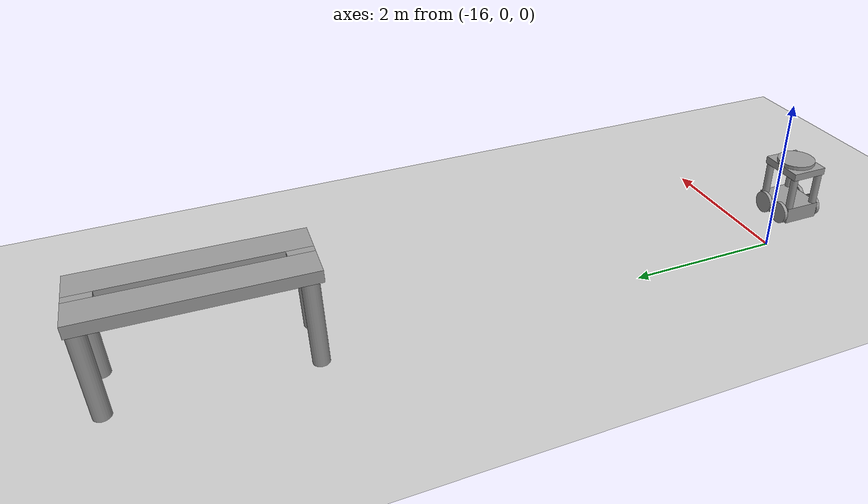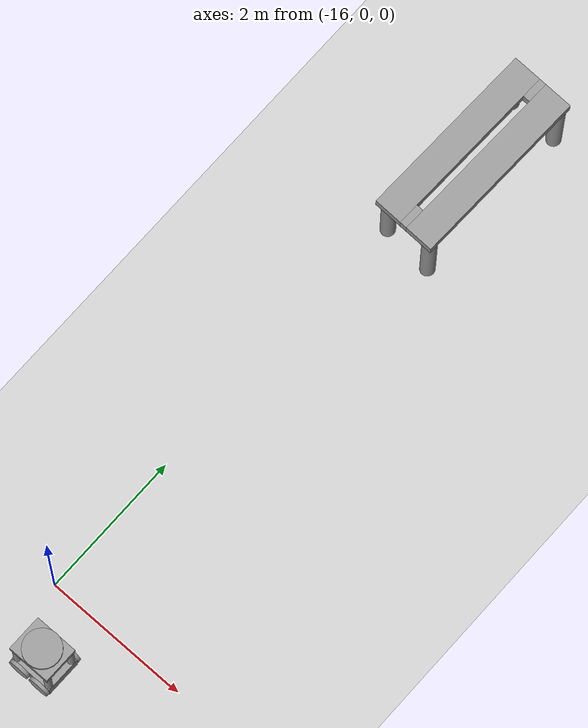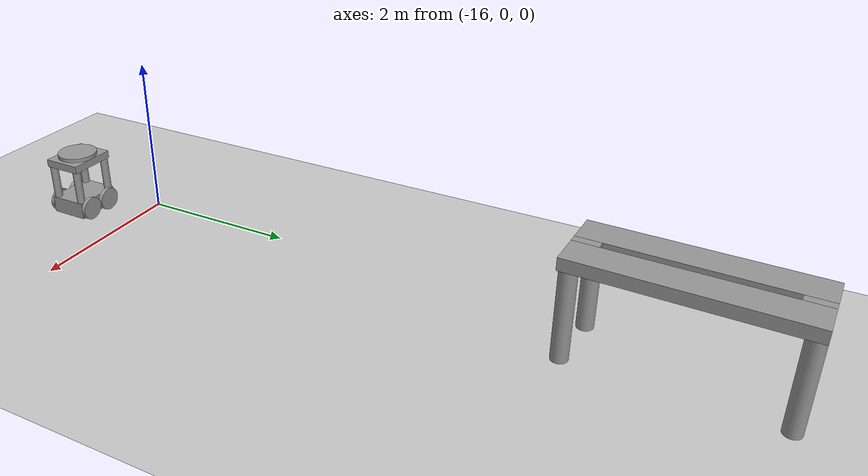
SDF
<sdf version="1.6">
 <world name="default">
  <model name="ground_plane">
   <static>1</static>
   <link name="link">
    <collision name="collision">
     <geometry><plane><normal>0 0 1</normal><size>100 100</size></plane></geometry>
     <surface><friction><ode><mu>100</mu><mu2>50</mu2></ode></friction></surface>
    </collision>
    <visual name="visual">
     <cast_shadows>0</cast_shadows>
     <geometry><plane><normal>0 0 1</normal><size>100 100</size></plane></geometry>
     <material>
      <script><uri>file://media/materials/scripts/gazebo.material</uri><name>Gazebo/Grey</name></script>
     </material>
    </visual>
   </link>
  </model>
  <model name="exp_robot">
   <link name="link_0">
    <pose>-0 -0 -0.235909 0 -0 0</pose>
    <inertial>
     <mass>1</mass>
     <inertia>
      <ixx>0.166667</ixx>
      <ixy>0</ixy>
      <ixz>0</ixz>
      <iyy>0.166667</iyy>
      <iyz>0</iyz>
      <izz>0.166667</izz>
     </inertia>
    </inertial>
    <visual name="visual">
     <geometry><box><size>0.6 0.5 0.22</size></box></geometry>
     <material>
      <lighting>1</lighting>
      <script><uri>file://media/materials/scripts/gazebo.material</uri><name>Gazebo/Grey</name></script>
      <ambient>0.1 0.1 0.1 1</ambient>
      <diffuse>0.7 0.7 0.7 1</diffuse>
      <specular>0.01 0.01 0.01 1</specular>
      <emissive>0 0 0 1</emissive>
      <shader type="vertex"><normal_map>__default__</normal_map></shader>
     </material>
    </visual>
    <collision name="collision">
     <geometry><box><size>0.6 0.5 0.22</size></box></geometry>
     <surface>
      <friction>
       <ode><mu>1</mu><mu2>1</mu2><fdir1>0 0 0</fdir1><slip1>0</slip1><slip2>0</slip2></ode>
       <torsional>
        <coefficient>1</coefficient>
        <patch_radius>0</patch_radius>
        <surface_radius>0</surface_radius>
        <use_patch_radius>1</use_patch_radius>
        <ode><slip>0</slip></ode>
       </torsional>
      </friction>
      <bounce><restitution_coefficient>0</restitution_coefficient><threshold>1e+06</threshold></bounce>
      <contact>
       <collide_without_contact>0</collide_without_contact>
       <collide_without_contact_bitmask>1</collide_without_contact_bitmask>
       <collide_bitmask>1</collide_bitmask>
       <ode>
        <soft_cfm>0</soft_cfm>
        <soft_erp>0.2</soft_erp>
        <kp>1e+13</kp>
        <kd>1</kd>
        <max_vel>0.01</max_vel>
        <min_depth>0</min_depth>
       </ode>
       <bullet>
        <split_impulse>1</split_impulse>
        <split_impulse_penetration_threshold>-0.01</split_impulse_penetration_threshold>
        <soft_cfm>0</soft_cfm>
        <soft_erp>0.2</soft_erp>
        <kp>1e+13</kp>
        <kd>1</kd>
       </bullet>
      </contact>
     </surface>
    </collision>
   </link>
   <link name="link_0_clone">
    <pose>0 -0 0.364091 0 -0 0</pose>
    <inertial>
     <mass>1</mass>
     <inertia>
      <ixx>0.166667</ixx>
      <ixy>0</ixy>
      <ixz>0</ixz>
      <iyy>0.166667</iyy>
      <iyz>0</iyz>
      <izz>0.166667</izz>
     </inertia>
    </inertial>
    <visual name="visual">
     <geometry><box><size>0.6 0.5 0.1</size></box></geometry>
     <material>
      <lighting>1</lighting>
      <script><uri>file://media/materials/scripts/gazebo.material</uri><name>Gazebo/Grey</name></script>
      <ambient>0.3 0.3 0.3 1</ambient>
      <diffuse>0.7 0.7 0.7 1</diffuse>
      <specular>0.01 0.01 0.01 1</specular>
      <emissive>0 0 0 1</emissive>
      <shader type="vertex"><normal_map>__default__</normal_map></shader>
     </material>
    </visual>
    <collision name="collision">
     <geometry><box><size>0.6 0.5 0.1</size></box></geometry>
     <surface>
      <friction>
       <ode><mu>1</mu><mu2>1</mu2><fdir1>0 0 0</fdir1><slip1>0</slip1><slip2>0</slip2></ode>
       <torsional>
        <coefficient>1</coefficient>
        <patch_radius>0</patch_radius>
        <surface_radius>0</surface_radius>
        <use_patch_radius>1</use_patch_radius>
        <ode><slip>0</slip></ode>
       </torsional>
      </friction>
      <bounce><restitution_coefficient>0</restitution_coefficient><threshold>1e+06</threshold></bounce>
      <contact>
       <collide_without_contact>0</collide_without_contact>
       <collide_without_contact_bitmask>1</collide_without_contact_bitmask>
       <collide_bitmask>1</collide_bitmask>
       <ode>
        <soft_cfm>0</soft_cfm>
        <soft_erp>0.2</soft_erp>
        <kp>1e+13</kp>
        <kd>1</kd>
        <max_vel>0.01</max_vel>
        <min_depth>0</min_depth>
       </ode>
       <bullet>
        <split_impulse>1</split_impulse>
        <split_impulse_penetration_threshold>-0.01</split_impulse_penetration_threshold>
        <soft_cfm>0</soft_cfm>
        <soft_erp>0.2</soft_erp>
        <kp>1e+13</kp>
        <kd>1</kd>
       </bullet>
      </contact>
     </surface>
    </collision>
   </link>
   <link name="link_1">
    <pose>-0.25 0.2 0.094091 0 -0 0</pose>
    <inertial>
     <mass>1</mass>
     <inertia><ixx>0.145833</ixx><ixy>0</ixy><ixz>0</ixz><iyy>0.145833</iyy><iyz>0</iyz><izz>0.125</izz></inertia>
    </inertial>
    <visual name="visual">
     <geometry><cylinder><radius>0.05</radius><length>0.44</length></cylinder></geometry>
     <material>
      <lighting>1</lighting>
      <script><uri>file://media/materials/scripts/gazebo.material</uri><name>Gazebo/Grey</name></script>
      <ambient>0.3 0.3 0.3 1</ambient>
      <diffuse>0.7 0.7 0.7 1</diffuse>
      <specular>0.01 0.01 0.01 1</specular>
      <emissive>0 0 0 1</emissive>
      <shader type="vertex"><normal_map>__default__</normal_map></shader>
     </material>
    </visual>
    <collision name="collision">
     <geometry><cylinder><radius>0.05</radius><length>0.44</length></cylinder></geometry>
     <surface>
      <friction>
       <ode><mu>1</mu><mu2>1</mu2><fdir1>0 0 0</fdir1><slip1>0</slip1><slip2>0</slip2></ode>
       <torsional>
        <coefficient>1</coefficient>
        <patch_radius>0</patch_radius>
        <surface_radius>0</surface_radius>
        <use_patch_radius>1</use_patch_radius>
        <ode><slip>0</slip></ode>
       </torsional>
      </friction>
      <bounce><restitution_coefficient>0</restitution_coefficient><threshold>1e+06</threshold></bounce>
      <contact>
       <collide_without_contact>0</collide_without_contact>
       <collide_without_contact_bitmask>1</collide_without_contact_bitmask>
       <collide_bitmask>1</collide_bitmask>
       <ode>
        <soft_cfm>0</soft_cfm>
        <soft_erp>0.2</soft_erp>
        <kp>1e+13</kp>
        <kd>1</kd>
        <max_vel>0.01</max_vel>
        <min_depth>0</min_depth>
       </ode>
       <bullet>
        <split_impulse>1</split_impulse>
        <split_impulse_penetration_threshold>-0.01</split_impulse_penetration_threshold>
        <soft_cfm>0</soft_cfm>
        <soft_erp>0.2</soft_erp>
        <kp>1e+13</kp>
        <kd>1</kd>
       </bullet>
      </contact>
     </surface>
    </collision>
   </link>
   <link name="link_1_clone">
    <pose>-0.25 -0.2 0.094091 0 -0 0</pose>
    <inertial>
     <mass>1</mass>
     <inertia><ixx>0.145833</ixx><ixy>0</ixy><ixz>0</ixz><iyy>0.145833</iyy><iyz>0</iyz><izz>0.125</izz></inertia>
    </inertial>
    <visual name="visual">
     <geometry><cylinder><radius>0.05</radius><length>0.44</length></cylinder></geometry>
     <material>
      <lighting>1</lighting>
      <script><uri>file://media/materials/scripts/gazebo.material</uri><name>Gazebo/Grey</name></script>
      <ambient>0.3 0.3 0.3 1</ambient>
      <diffuse>0.7 0.7 0.7 1</diffuse>
      <specular>0.01 0.01 0.01 1</specular>
      <emissive>0 0 0 1</emissive>
      <shader type="vertex"><normal_map>__default__</normal_map></shader>
     </material>
    </visual>
    <collision name="collision">
     <geometry><cylinder><radius>0.05</radius><length>0.44</length></cylinder></geometry>
     <surface>
      <friction>
       <ode><mu>1</mu><mu2>1</mu2><fdir1>0 0 0</fdir1><slip1>0</slip1><slip2>0</slip2></ode>
       <torsional>
        <coefficient>1</coefficient>
        <patch_radius>0</patch_radius>
        <surface_radius>0</surface_radius>
        <use_patch_radius>1</use_patch_radius>
        <ode><slip>0</slip></ode>
       </torsional>
      </friction>
      <bounce><restitution_coefficient>0</restitution_coefficient><threshold>1e+06</threshold></bounce>
      <contact>
       <collide_without_contact>0</collide_without_contact>
       <collide_without_contact_bitmask>1</collide_without_contact_bitmask>
       <collide_bitmask>1</collide_bitmask>
       <ode>
        <soft_cfm>0</soft_cfm>
        <soft_erp>0.2</soft_erp>
        <kp>1e+13</kp>
        <kd>1</kd>
        <max_vel>0.01</max_vel>
        <min_depth>0</min_depth>
       </ode>
       <bullet>
        <split_impulse>1</split_impulse>
        <split_impulse_penetration_threshold>-0.01</split_impulse_penetration_threshold>
        <soft_cfm>0</soft_cfm>
        <soft_erp>0.2</soft_erp>
        <kp>1e+13</kp>
        <kd>1</kd>
       </bullet>
      </contact>
     </surface>
    </collision>
   </link>
   <link name="link_1_clone_0">
    <pose>0.25 -0.2 0.094091 0 -0 0</pose>
    <inertial>
     <mass>1</mass>
     <inertia><ixx>0.145833</ixx><ixy>0</ixy><ixz>0</ixz><iyy>0.145833</iyy><iyz>0</iyz><izz>0.125</izz></inertia>
    </inertial>
    <visual name="visual">
     <geometry><cylinder><radius>0.05</radius><length>0.44</length></cylinder></geometry>
     <material>
      <lighting>1</lighting>
      <script><uri>file://media/materials/scripts/gazebo.material</uri><name>Gazebo/Grey</name></script>
      <ambient>0.3 0.3 0.3 1</ambient>
      <diffuse>0.7 0.7 0.7 1</diffuse>
      <specular>0.01 0.01 0.01 1</specular>
      <emissive>0 0 0 1</emissive>
      <shader type="vertex"><normal_map>__default__</normal_map></shader>
     </material>
    </visual>
    <collision name="collision">
     <geometry><cylinder><radius>0.05</radius><length>0.44</length></cylinder></geometry>
     <surface>
      <friction>
       <ode><mu>1</mu><mu2>1</mu2><fdir1>0 0 0</fdir1><slip1>0</slip1><slip2>0</slip2></ode>
       <torsional>
        <coefficient>1</coefficient>
        <patch_radius>0</patch_radius>
        <surface_radius>0</surface_radius>
        <use_patch_radius>1</use_patch_radius>
        <ode><slip>0</slip></ode>
       </torsional>
      </friction>
      <bounce><restitution_coefficient>0</restitution_coefficient><threshold>1e+06</threshold></bounce>
      <contact>
       <collide_without_contact>0</collide_without_contact>
       <collide_without_contact_bitmask>1</collide_without_contact_bitmask>
       <collide_bitmask>1</collide_bitmask>
       <ode>
        <soft_cfm>0</soft_cfm>
        <soft_erp>0.2</soft_erp>
        <kp>1e+13</kp>
        <kd>1</kd>
        <max_vel>0.01</max_vel>
        <min_depth>0</min_depth>
       </ode>
       <bullet>
        <split_impulse>1</split_impulse>
        <split_impulse_penetration_threshold>-0.01</split_impulse_penetration_threshold>
        <soft_cfm>0</soft_cfm>
        <soft_erp>0.2</soft_erp>
        <kp>1e+13</kp>
        <kd>1</kd>
       </bullet>
      </contact>
     </surface>
    </collision>
   </link>
   <link name="link_1_clone_1">
    <pose>0.25 0.2 0.094091 0 -0 0</pose>
    <inertial>
     <mass>1</mass>
     <inertia><ixx>0.145833</ixx><ixy>0</ixy><ixz>0</ixz><iyy>0.145833</iyy><iyz>0</iyz><izz>0.125</izz></inertia>
    </inertial>
    <visual name="visual">
     <geometry><cylinder><radius>0.05</radius><length>0.44</length></cylinder></geometry>
     <material>
      <lighting>1</lighting>
      <script><uri>file://media/materials/scripts/gazebo.material</uri><name>Gazebo/Grey</name></script>
      <ambient>0.3 0.3 0.3 1</ambient>
      <diffuse>0.7 0.7 0.7 1</diffuse>
      <specular>0.01 0.01 0.01 1</specular>
      <emissive>0 0 0 1</emissive>
      <shader type="vertex"><normal_map>__default__</normal_map></shader>
     </material>
    </visual>
    <collision name="collision">
     <geometry><cylinder><radius>0.05</radius><length>0.44</length></cylinder></geometry>
     <surface>
      <friction>
       <ode><mu>1</mu><mu2>1</mu2><fdir1>0 0 0</fdir1><slip1>0</slip1><slip2>0</slip2></ode>
       <torsional>
        <coefficient>1</coefficient>
        <patch_radius>0</patch_radius>
        <surface_radius>0</surface_radius>
        <use_patch_radius>1</use_patch_radius>
        <ode><slip>0</slip></ode>
       </torsional>
      </friction>
      <bounce><restitution_coefficient>0</restitution_coefficient><threshold>1e+06</threshold></bounce>
      <contact>
       <collide_without_contact>0</collide_without_contact>
       <collide_without_contact_bitmask>1</collide_without_contact_bitmask>
       <collide_bitmask>1</collide_bitmask>
       <ode>
        <soft_cfm>0</soft_cfm>
        <soft_erp>0.2</soft_erp>
        <kp>1e+13</kp>
        <kd>1</kd>
        <max_vel>0.01</max_vel>
        <min_depth>0</min_depth>
       </ode>
       <bullet>
        <split_impulse>1</split_impulse>
        <split_impulse_penetration_threshold>-0.01</split_impulse_penetration_threshold>
        <soft_cfm>0</soft_cfm>
        <soft_erp>0.2</soft_erp>
        <kp>1e+13</kp>
        <kd>1</kd>
       </bullet>
      </contact>
     </surface>
    </collision>
   </link>
   <link name="link_2">
    <pose>-0 0 0.439091 0 -0 0</pose>
    <inertial>
     <mass>1</mass>
     <inertia><ixx>0.145833</ixx><ixy>0</ixy><ixz>0</ixz><iyy>0.145833</iyy><iyz>0</iyz><izz>0.125</izz></inertia>
    </inertial>
    <visual name="visual">
     <geometry><cylinder><radius>0.25</radius><length>0.05</length></cylinder></geometry>
     <material>
      <lighting>1</lighting>
      <script><uri>file://media/materials/scripts/gazebo.material</uri><name>Gazebo/Grey</name></script>
      <ambient>0.3 0.3 0.3 1</ambient>
      <diffuse>0.7 0.7 0.7 1</diffuse>
      <specular>0.01 0.01 0.01 1</specular>
      <emissive>0 0 0 1</emissive>
      <shader type="vertex"><normal_map>__default__</normal_map></shader>
     </material>
    </visual>
    <collision name="collision">
     <geometry><cylinder><radius>0.25</radius><length>0.05</length></cylinder></geometry>
     <surface>
      <friction>
       <ode><mu>1</mu><mu2>1</mu2><fdir1>0 0 0</fdir1><slip1>0</slip1><slip2>0</slip2></ode>
       <torsional>
        <coefficient>1</coefficient>
        <patch_radius>0</patch_radius>
        <surface_radius>0</surface_radius>
        <use_patch_radius>1</use_patch_radius>
        <ode><slip>0</slip></ode>
       </torsional>
      </friction>
      <bounce><restitution_coefficient>0</restitution_coefficient><threshold>1e+06</threshold></bounce>
      <contact>
       <collide_without_contact>0</collide_without_contact>
       <collide_without_contact_bitmask>1</collide_without_contact_bitmask>
       <collide_bitmask>1</collide_bitmask>
       <ode>
        <soft_cfm>0</soft_cfm>
        <soft_erp>0.2</soft_erp>
        <kp>1e+13</kp>
        <kd>1</kd>
        <max_vel>0.01</max_vel>
        <min_depth>0</min_depth>
       </ode>
       <bullet>
        <split_impulse>1</split_impulse>
        <split_impulse_penetration_threshold>-0.01</split_impulse_penetration_threshold>
        <soft_cfm>0</soft_cfm>
        <soft_erp>0.2</soft_erp>
        <kp>1e+13</kp>
        <kd>1</kd>
       </bullet>
      </contact>
     </surface>
    </collision>
   </link>
   <link name="link_3">
    <pose>0.16 -0.275014 -0.235909 1.5707 -0 0</pose>
    <inertial>
     <mass>1</mass>
     <inertia><ixx>0.145833</ixx><ixy>0</ixy><ixz>0</ixz><iyy>0.145833</iyy><iyz>0</iyz><izz>0.125</izz></inertia>
    </inertial>
    <visual name="visual">
     <geometry><cylinder><radius>0.15</radius><length>0.05</length></cylinder></geometry>
     <material>
      <lighting>1</lighting>
      <script><uri>file://media/materials/scripts/gazebo.material</uri><name>Gazebo/Grey</name></script>
      <ambient>0.3 0.3 0.3 1</ambient>
      <diffuse>0.7 0.7 0.7 1</diffuse>
      <specular>0.01 0.01 0.01 1</specular>
      <emissive>0 0 0 1</emissive>
      <shader type="vertex"><normal_map>__default__</normal_map></shader>
     </material>
    </visual>
    <collision name="collision">
     <geometry><cylinder><radius>0.15</radius><length>0.05</length></cylinder></geometry>
     <surface>
      <friction>
       <ode><mu>1</mu><mu2>1</mu2><fdir1>0 0 0</fdir1><slip1>0</slip1><slip2>0</slip2></ode>
       <torsional>
        <coefficient>1</coefficient>
        <patch_radius>0</patch_radius>
        <surface_radius>0</surface_radius>
        <use_patch_radius>1</use_patch_radius>
        <ode><slip>0</slip></ode>
       </torsional>
      </friction>
      <bounce><restitution_coefficient>0</restitution_coefficient><threshold>1e+06</threshold></bounce>
      <contact>
       <collide_without_contact>0</collide_without_contact>
       <collide_without_contact_bitmask>1</collide_without_contact_bitmask>
       <collide_bitmask>1</collide_bitmask>
       <ode>
        <soft_cfm>0</soft_cfm>
        <soft_erp>0.2</soft_erp>
        <kp>1e+13</kp>
        <kd>1</kd>
        <max_vel>0.01</max_vel>
        <min_depth>0</min_depth>
       </ode>
       <bullet>
        <split_impulse>1</split_impulse>
        <split_impulse_penetration_threshold>-0.01</split_impulse_penetration_threshold>
        <soft_cfm>0</soft_cfm>
        <soft_erp>0.2</soft_erp>
        <kp>1e+13</kp>
        <kd>1</kd>
       </bullet>
      </contact>
     </surface>
    </collision>
   </link>
   <link name="link_3_clone">
    <pose>0.16 0.275014 -0.235909 1.5707 -0 0</pose>
    <inertial>
     <mass>1</mass>
     <inertia><ixx>0.145833</ixx><ixy>0</ixy><ixz>0</ixz><iyy>0.145833</iyy><iyz>0</iyz><izz>0.125</izz></inertia>
    </inertial>
    <visual name="visual">
     <geometry><cylinder><radius>0.15</radius><length>0.05</length></cylinder></geometry>
     <material>
      <lighting>1</lighting>
      <script><uri>file://media/materials/scripts/gazebo.material</uri><name>Gazebo/Grey</name></script>
      <ambient>0.3 0.3 0.3 1</ambient>
      <diffuse>0.7 0.7 0.7 1</diffuse>
      <specular>0.01 0.01 0.01 1</specular>
      <emissive>0 0 0 1</emissive>
      <shader type="vertex"><normal_map>__default__</normal_map></shader>
     </material>
    </visual>
    <collision name="collision">
     <geometry><cylinder><radius>0.15</radius><length>0.05</length></cylinder></geometry>
     <surface>
      <friction>
       <ode><mu>1</mu><mu2>1</mu2><fdir1>0 0 0</fdir1><slip1>0</slip1><slip2>0</slip2></ode>
       <torsional>
        <coefficient>1</coefficient>
        <patch_radius>0</patch_radius>
        <surface_radius>0</surface_radius>
        <use_patch_radius>1</use_patch_radius>
        <ode><slip>0</slip></ode>
       </torsional>
      </friction>
      <bounce><restitution_coefficient>0</restitution_coefficient><threshold>1e+06</threshold></bounce>
      <contact>
       <collide_without_contact>0</collide_without_contact>
       <collide_without_contact_bitmask>1</collide_without_contact_bitmask>
       <collide_bitmask>1</collide_bitmask>
       <ode>
        <soft_cfm>0</soft_cfm>
        <soft_erp>0.2</soft_erp>
        <kp>1e+13</kp>
        <kd>1</kd>
        <max_vel>0.01</max_vel>
        <min_depth>0</min_depth>
       </ode>
       <bullet>
        <split_impulse>1</split_impulse>
        <split_impulse_penetration_threshold>-0.01</split_impulse_penetration_threshold>
        <soft_cfm>0</soft_cfm>
        <soft_erp>0.2</soft_erp>
        <kp>1e+13</kp>
        <kd>1</kd>
       </bullet>
      </contact>
     </surface>
    </collision>
   </link>
   <link name="link_3_clone_0">
    <pose>-0.16 0.275014 -0.235909 1.5707 -0 0</pose>
    <inertial>
     <mass>1</mass>
     <inertia><ixx>0.145833</ixx><ixy>0</ixy><ixz>0</ixz><iyy>0.145833</iyy><iyz>0</iyz><izz>0.125</izz></inertia>
    </inertial>
    <visual name="visual">
     <geometry><cylinder><radius>0.15</radius><length>0.05</length></cylinder></geometry>
     <material>
      <lighting>1</lighting>
      <script><uri>file://media/materials/scripts/gazebo.material</uri><name>Gazebo/Grey</name></script>
      <ambient>0.3 0.3 0.3 1</ambient>
      <diffuse>0.7 0.7 0.7 1</diffuse>
      <specular>0.01 0.01 0.01 1</specular>
      <emissive>0 0 0 1</emissive>
      <shader type="vertex"><normal_map>__default__</normal_map></shader>
     </material>
    </visual>
    <collision name="collision">
     <geometry><cylinder><radius>0.15</radius><length>0.05</length></cylinder></geometry>
     <surface>
      <friction>
       <ode><mu>1</mu><mu2>1</mu2><fdir1>0 0 0</fdir1><slip1>0</slip1><slip2>0</slip2></ode>
       <torsional>
        <coefficient>1</coefficient>
        <patch_radius>0</patch_radius>
        <surface_radius>0</surface_radius>
        <use_patch_radius>1</use_patch_radius>
        <ode><slip>0</slip></ode>
       </torsional>
      </friction>
      <bounce><restitution_coefficient>0</restitution_coefficient><threshold>1e+06</threshold></bounce>
      <contact>
       <collide_without_contact>0</collide_without_contact>
       <collide_without_contact_bitmask>1</collide_without_contact_bitmask>
       <collide_bitmask>1</collide_bitmask>
       <ode>
        <soft_cfm>0</soft_cfm>
        <soft_erp>0.2</soft_erp>
        <kp>1e+13</kp>
        <kd>1</kd>
        <max_vel>0.01</max_vel>
        <min_depth>0</min_depth>
       </ode>
       <bullet>
        <split_impulse>1</split_impulse>
        <split_impulse_penetration_threshold>-0.01</split_impulse_penetration_threshold>
        <soft_cfm>0</soft_cfm>
        <soft_erp>0.2</soft_erp>
        <kp>1e+13</kp>
        <kd>1</kd>
       </bullet>
      </contact>
     </surface>
    </collision>
   </link>
   <link name="link_3_clone_1">
    <pose>-0.16 -0.275014 -0.235909 1.5707 -0 0</pose>
    <inertial>
     <mass>1</mass>
     <inertia><ixx>0.145833</ixx><ixy>0</ixy><ixz>0</ixz><iyy>0.145833</iyy><iyz>0</iyz><izz>0.125</izz></inertia>
    </inertial>
    <visual name="visual">
     <geometry><cylinder><radius>0.15</radius><length>0.05</length></cylinder></geometry>
     <material>
      <lighting>1</lighting>
      <script><uri>file://media/materials/scripts/gazebo.material</uri><name>Gazebo/Grey</name></script>
      <ambient>0.3 0.3 0.3 1</ambient>
      <diffuse>0.7 0.7 0.7 1</diffuse>
      <specular>0.01 0.01 0.01 1</specular>
      <emissive>0 0 0 1</emissive>
      <shader type="vertex"><normal_map>__default__</normal_map></shader>
     </material>
    </visual>
    <collision name="collision">
     <geometry><cylinder><radius>0.15</radius><length>0.05</length></cylinder></geometry>
     <surface>
      <friction>
       <ode><mu>1</mu><mu2>1</mu2><fdir1>0 0 0</fdir1><slip1>0</slip1><slip2>0</slip2></ode>
       <torsional>
        <coefficient>1</coefficient>
        <patch_radius>0</patch_radius>
        <surface_radius>0</surface_radius>
        <use_patch_radius>1</use_patch_radius>
        <ode><slip>0</slip></ode>
       </torsional>
      </friction>
      <bounce><restitution_coefficient>0</restitution_coefficient><threshold>1e+06</threshold></bounce>
      <contact>
       <collide_without_contact>0</collide_without_contact>
       <collide_without_contact_bitmask>1</collide_without_contact_bitmask>
       <collide_bitmask>1</collide_bitmask>
       <ode>
        <soft_cfm>0</soft_cfm>
        <soft_erp>0.2</soft_erp>
        <kp>1e+13</kp>
        <kd>1</kd>
        <max_vel>0.01</max_vel>
        <min_depth>0</min_depth>
       </ode>
       <bullet>
        <split_impulse>1</split_impulse>
        <split_impulse_penetration_threshold>-0.01</split_impulse_penetration_threshold>
        <soft_cfm>0</soft_cfm>
        <soft_erp>0.2</soft_erp>
        <kp>1e+13</kp>
        <kd>1</kd>
       </bullet>
      </contact>
     </surface>
    </collision>
   </link>
   <joint name="link_0_JOINT_0" type="fixed">
    <parent>link_0</parent>
    <child>link_1_clone_1</child>
    <physics>
     <ode><limit><cfm>0</cfm><erp>0.2</erp></limit><suspension><cfm>0</cfm><erp>0.2</erp></suspension></ode>
    </physics>
   </joint>
   <joint name="link_0_JOINT_1" type="fixed">
    <parent>link_0</parent>
    <child>link_1_clone_0</child>
    <physics>
     <ode><limit><cfm>0</cfm><erp>0.2</erp></limit><suspension><cfm>0</cfm><erp>0.2</erp></suspension></ode>
    </physics>
   </joint>
   <joint name="link_0_JOINT_2" type="fixed">
    <parent>link_0</parent>
    <child>link_1_clone</child>
    <physics>
     <ode><limit><cfm>0</cfm><erp>0.2</erp></limit><suspension><cfm>0</cfm><erp>0.2</erp></suspension></ode>
    </physics>
   </joint>
   <joint name="link_0_JOINT_3" type="fixed">
    <parent>link_0</parent>
    <child>link_1</child>
    <physics>
     <ode><limit><cfm>0</cfm><erp>0.2</erp></limit><suspension><cfm>0</cfm><erp>0.2</erp></suspension></ode>
    </physics>
   </joint>
   <joint name="link_0_JOINT_4" type="fixed">
    <parent>link_0</parent>
    <child>link_0_clone</child>
    <physics>
     <ode><limit><cfm>0</cfm><erp>0.2</erp></limit><suspension><cfm>0</cfm><erp>0.2</erp></suspension></ode>
    </physics>
   </joint>
   <joint name="link_0_JOINT_6" type="revolute">
    <parent>link_0</parent>
    <child>link_3</child>
    <axis>
     <xyz>0 0 1</xyz>
     <use_parent_model_frame>0</use_parent_model_frame>
     <limit>
      <lower>-1.79769e+308</lower>
      <upper>1.79769e+308</upper>
      <effort>-1</effort>
      <velocity>-1</velocity>
     </limit>
     <dynamics>
      <spring_reference>0</spring_reference>
      <spring_stiffness>0</spring_stiffness>
      <damping>0</damping>
      <friction>0</friction>
     </dynamics>
    </axis>
    <physics>
     <ode><limit><cfm>0</cfm><erp>0.2</erp></limit><suspension><cfm>0</cfm><erp>0.2</erp></suspension></ode>
    </physics>
   </joint>
   <joint name="link_0_JOINT_7" type="revolute">
    <parent>link_0</parent>
    <child>link_3_clone_1</child>
    <axis>
     <xyz>0 0 1</xyz>
     <use_parent_model_frame>0</use_parent_model_frame>
     <limit>
      <lower>-1.79769e+308</lower>
      <upper>1.79769e+308</upper>
      <effort>-1</effort>
      <velocity>-1</velocity>
     </limit>
     <dynamics>
      <spring_reference>0</spring_reference>
      <spring_stiffness>0</spring_stiffness>
      <damping>0</damping>
      <friction>0</friction>
     </dynamics>
    </axis>
    <physics>
     <ode><limit><cfm>0</cfm><erp>0.2</erp></limit><suspension><cfm>0</cfm><erp>0.2</erp></suspension></ode>
    </physics>
   </joint>
   <joint name="link_0_JOINT_8" type="revolute">
    <parent>link_0</parent>
    <child>link_3_clone</child>
    <axis>
     <xyz>0 0 1</xyz>
     <use_parent_model_frame>0</use_parent_model_frame>
     <limit>
      <lower>-1.79769e+308</lower>
      <upper>1.79769e+308</upper>
      <effort>-1</effort>
      <velocity>-1</velocity>
     </limit>
     <dynamics>
      <spring_reference>0</spring_reference>
      <spring_stiffness>0</spring_stiffness>
      <damping>0</damping>
      <friction>0</friction>
     </dynamics>
    </axis>
    <physics>
     <ode><limit><cfm>0</cfm><erp>0.2</erp></limit><suspension><cfm>0</cfm><erp>0.2</erp></suspension></ode>
    </physics>
   </joint>
   <joint name="link_0_JOINT_9" type="revolute">
    <parent>link_0</parent>
    <child>link_3_clone_0</child>
    <axis>
     <xyz>0 0 1</xyz>
     <use_parent_model_frame>0</use_parent_model_frame>
     <limit>
      <lower>-1.79769e+308</lower>
      <upper>1.79769e+308</upper>
      <effort>-1</effort>
      <velocity>-1</velocity>
     </limit>
     <dynamics>
      <spring_reference>0</spring_reference>
      <spring_stiffness>0</spring_stiffness>
      <damping>0</damping>
      <friction>0</friction>
     </dynamics>
    </axis>
    <physics>
     <ode><limit><cfm>0</cfm><erp>0.2</erp></limit><suspension><cfm>0</cfm><erp>0.2</erp></suspension></ode>
    </physics>
   </joint>
   <joint name="link_0_clone_JOINT_5" type="revolute">
    <parent>link_0_clone</parent>
    <child>link_2</child>
    <axis>
     <xyz>0 0 1</xyz>
     <use_parent_model_frame>0</use_parent_model_frame>
     <limit>
      <lower>-1.79769e+308</lower>
      <upper>1.79769e+308</upper>
      <effort>-1</effort>
      <velocity>-1</velocity>
     </limit>
     <dynamics>
      <spring_reference>0</spring_reference>
      <spring_stiffness>0</spring_stiffness>
      <damping>0</damping>
      <friction>0</friction>
     </dynamics>
    </axis>
    <physics>
     <ode><limit><cfm>0</cfm><erp>0.2</erp></limit><suspension><cfm>0</cfm><erp>0.2</erp></suspension></ode>
    </physics>
   </joint>
   <static>0</static>
   <pose>-15.429 -0.790934 0.385912 2e-06 1e-06 -0.001843</pose>
  </model>
  <model name="work_table_2">
   <link name="link_0">
    <pose>1.115 -0.35 -0.3125 0 -0 0</pose>
    <inertial>
     <mass>1</mass>
     <inertia><ixx>0.145833</ixx><ixy>0</ixy><ixz>0</ixz><iyy>0.145833</iyy><iyz>0</iyz><izz>0.125</izz></inertia>
    </inertial>
    <visual name="visual">
     <geometry><cylinder><radius>0.1</radius><length>1.1</length></cylinder></geometry>
     <material>
      <lighting>1</lighting>
      <script><uri>file://media/materials/scripts/gazebo.material</uri><name>Gazebo/Grey</name></script>
      <ambient>0.3 0.3 0.3 1</ambient>
      <diffuse>0.7 0.7 0.7 1</diffuse>
      <specular>0.01 0.01 0.01 1</specular>
      <emissive>0 0 0 1</emissive>
      <shader type="vertex"><normal_map>__default__</normal_map></shader>
     </material>
    </visual>
    <collision name="collision">
     <geometry><cylinder><radius>0.1</radius><length>1.1</length></cylinder></geometry>
     <surface>
      <friction>
       <ode><mu>1</mu><mu2>1</mu2><fdir1>0 0 0</fdir1><slip1>0</slip1><slip2>0</slip2></ode>
       <torsional>
        <coefficient>1</coefficient>
        <patch_radius>0</patch_radius>
        <surface_radius>0</surface_radius>
        <use_patch_radius>1</use_patch_radius>
        <ode><slip>0</slip></ode>
       </torsional>
      </friction>
      <bounce><restitution_coefficient>0</restitution_coefficient><threshold>1e+06</threshold></bounce>
      <contact>
       <collide_without_contact>0</collide_without_contact>
       <collide_without_contact_bitmask>1</collide_without_contact_bitmask>
       <collide_bitmask>1</collide_bitmask>
       <ode>
        <soft_cfm>0</soft_cfm>
        <soft_erp>0.2</soft_erp>
        <kp>1e+13</kp>
        <kd>1</kd>
        <max_vel>0.01</max_vel>
        <min_depth>0</min_depth>
       </ode>
       <bullet>
        <split_impulse>1</split_impulse>
        <split_impulse_penetration_threshold>-0.01</split_impulse_penetration_threshold>
        <soft_cfm>0</soft_cfm>
        <soft_erp>0.2</soft_erp>
        <kp>1e+13</kp>
        <kd>1</kd>
       </bullet>
      </contact>
     </surface>
    </collision>
   </link>
   <link name="link_0_clone">
    <pose>-1.145 -0.35 -0.3125 0 -0 0</pose>
    <inertial>
     <mass>1</mass>
     <inertia><ixx>0.145833</ixx><ixy>0</ixy><ixz>0</ixz><iyy>0.145833</iyy><iyz>0</iyz><izz>0.125</izz></inertia>
    </inertial>
    <visual name="visual">
     <geometry><cylinder><radius>0.1</radius><length>1.1</length></cylinder></geometry>
     <material>
      <lighting>1</lighting>
      <script><uri>file://media/materials/scripts/gazebo.material</uri><name>Gazebo/Grey</name></script>
      <ambient>0.3 0.3 0.3 1</ambient>
      <diffuse>0.7 0.7 0.7 1</diffuse>
      <specular>0.01 0.01 0.01 1</specular>
      <emissive>0 0 0 1</emissive>
      <shader type="vertex"><normal_map>__default__</normal_map></shader>
     </material>
    </visual>
    <collision name="collision">
     <geometry><cylinder><radius>0.1</radius><length>1.1</length></cylinder></geometry>
     <surface>
      <friction>
       <ode><mu>1</mu><mu2>1</mu2><fdir1>0 0 0</fdir1><slip1>0</slip1><slip2>0</slip2></ode>
       <torsional>
        <coefficient>1</coefficient>
        <patch_radius>0</patch_radius>
        <surface_radius>0</surface_radius>
        <use_patch_radius>1</use_patch_radius>
        <ode><slip>0</slip></ode>
       </torsional>
      </friction>
      <bounce><restitution_coefficient>0</restitution_coefficient><threshold>1e+06</threshold></bounce>
      <contact>
       <collide_without_contact>0</collide_without_contact>
       <collide_without_contact_bitmask>1</collide_without_contact_bitmask>
       <collide_bitmask>1</collide_bitmask>
       <ode>
        <soft_cfm>0</soft_cfm>
        <soft_erp>0.2</soft_erp>
        <kp>1e+13</kp>
        <kd>1</kd>
        <max_vel>0.01</max_vel>
        <min_depth>0</min_depth>
       </ode>
       <bullet>
        <split_impulse>1</split_impulse>
        <split_impulse_penetration_threshold>-0.01</split_impulse_penetration_threshold>
        <soft_cfm>0</soft_cfm>
        <soft_erp>0.2</soft_erp>
        <kp>1e+13</kp>
        <kd>1</kd>
       </bullet>
      </contact>
     </surface>
    </collision>
   </link>
   <link name="link_0_clone_0">
    <pose>-1.145 0.35 -0.3125 0 -0 0</pose>
    <inertial>
     <mass>1</mass>
     <inertia><ixx>0.145833</ixx><ixy>0</ixy><ixz>0</ixz><iyy>0.145833</iyy><iyz>0</iyz><izz>0.125</izz></inertia>
    </inertial>
    <visual name="visual">
     <geometry><cylinder><radius>0.1</radius><length>1.1</length></cylinder></geometry>
     <material>
      <lighting>1</lighting>
      <script><uri>file://media/materials/scripts/gazebo.material</uri><name>Gazebo/Grey</name></script>
      <ambient>0.3 0.3 0.3 1</ambient>
      <diffuse>0.7 0.7 0.7 1</diffuse>
      <specular>0.01 0.01 0.01 1</specular>
      <emissive>0 0 0 1</emissive>
      <shader type="vertex"><normal_map>__default__</normal_map></shader>
     </material>
    </visual>
    <collision name="collision">
     <geometry><cylinder><radius>0.1</radius><length>1.1</length></cylinder></geometry>
     <surface>
      <friction>
       <ode><mu>1</mu><mu2>1</mu2><fdir1>0 0 0</fdir1><slip1>0</slip1><slip2>0</slip2></ode>
       <torsional>
        <coefficient>1</coefficient>
        <patch_radius>0</patch_radius>
        <surface_radius>0</surface_radius>
        <use_patch_radius>1</use_patch_radius>
        <ode><slip>0</slip></ode>
       </torsional>
      </friction>
      <bounce><restitution_coefficient>0</restitution_coefficient><threshold>1e+06</threshold></bounce>
      <contact>
       <collide_without_contact>0</collide_without_contact>
       <collide_without_contact_bitmask>1</collide_without_contact_bitmask>
       <collide_bitmask>1</collide_bitmask>
       <ode>
        <soft_cfm>0</soft_cfm>
        <soft_erp>0.2</soft_erp>
        <kp>1e+13</kp>
        <kd>1</kd>
        <max_vel>0.01</max_vel>
        <min_depth>0</min_depth>
       </ode>
       <bullet>
        <split_impulse>1</split_impulse>
        <split_impulse_penetration_threshold>-0.01</split_impulse_penetration_threshold>
        <soft_cfm>0</soft_cfm>
        <soft_erp>0.2</soft_erp>
        <kp>1e+13</kp>
        <kd>1</kd>
       </bullet>
      </contact>
     </surface>
    </collision>
   </link>
   <link name="link_0_clone_1">
    <pose>1.155 0.35 -0.3125 0 -0 0</pose>
    <inertial>
     <mass>1</mass>
     <inertia><ixx>0.145833</ixx><ixy>0</ixy><ixz>0</ixz><iyy>0.145833</iyy><iyz>0</iyz><izz>0.125</izz></inertia>
    </inertial>
    <visual name="visual">
     <geometry><cylinder><radius>0.1</radius><length>1.1</length></cylinder></geometry>
     <material>
      <lighting>1</lighting>
      <script><uri>file://media/materials/scripts/gazebo.material</uri><name>Gazebo/Grey</name></script>
      <ambient>0.3 0.3 0.3 1</ambient>
      <diffuse>0.7 0.7 0.7 1</diffuse>
      <specular>0.01 0.01 0.01 1</specular>
      <emissive>0 0 0 1</emissive>
      <shader type="vertex"><normal_map>__default__</normal_map></shader>
     </material>
    </visual>
    <collision name="collision">
     <geometry><cylinder><radius>0.1</radius><length>1.1</length></cylinder></geometry>
     <surface>
      <friction>
       <ode><mu>1</mu><mu2>1</mu2><fdir1>0 0 0</fdir1><slip1>0</slip1><slip2>0</slip2></ode>
       <torsional>
        <coefficient>1</coefficient>
        <patch_radius>0</patch_radius>
        <surface_radius>0</surface_radius>
        <use_patch_radius>1</use_patch_radius>
        <ode><slip>0</slip></ode>
       </torsional>
      </friction>
      <bounce><restitution_coefficient>0</restitution_coefficient><threshold>1e+06</threshold></bounce>
      <contact>
       <collide_without_contact>0</collide_without_contact>
       <collide_without_contact_bitmask>1</collide_without_contact_bitmask>
       <collide_bitmask>1</collide_bitmask>
       <ode>
        <soft_cfm>0</soft_cfm>
        <soft_erp>0.2</soft_erp>
        <kp>1e+13</kp>
        <kd>1</kd>
        <max_vel>0.01</max_vel>
        <min_depth>0</min_depth>
       </ode>
       <bullet>
        <split_impulse>1</split_impulse>
        <split_impulse_penetration_threshold>-0.01</split_impulse_penetration_threshold>
        <soft_cfm>0</soft_cfm>
        <soft_erp>0.2</soft_erp>
        <kp>1e+13</kp>
        <kd>1</kd>
       </bullet>
      </contact>
     </surface>
    </collision>
   </link>
   <link name="link_1">
    <pose>0.005 -0.25 0.3125 0 -0 0</pose>
    <inertial>
     <mass>1</mass>
     <inertia>
      <ixx>0.166667</ixx>
      <ixy>0</ixy>
      <ixz>0</ixz>
      <iyy>0.166667</iyy>
      <iyz>0</iyz>
      <izz>0.166667</izz>
     </inertia>
    </inertial>
    <visual name="visual">
     <geometry><box><size>2.5 0.4 0.15</size></box></geometry>
     <material>
      <lighting>1</lighting>
      <script><uri>file://media/materials/scripts/gazebo.material</uri><name>Gazebo/Grey</name></script>
      <ambient>0.3 0.3 0.3 1</ambient>
      <diffuse>0.7 0.7 0.7 1</diffuse>
      <specular>0.01 0.01 0.01 1</specular>
      <emissive>0 0 0 1</emissive>
      <shader type="vertex"><normal_map>__default__</normal_map></shader>
     </material>
    </visual>
    <collision name="collision">
     <geometry><box><size>2.5 0.4 0.15</size></box></geometry>
     <surface>
      <friction>
       <ode><mu>1</mu><mu2>1</mu2><fdir1>0 0 0</fdir1><slip1>0</slip1><slip2>0</slip2></ode>
       <torsional>
        <coefficient>1</coefficient>
        <patch_radius>0</patch_radius>
        <surface_radius>0</surface_radius>
        <use_patch_radius>1</use_patch_radius>
        <ode><slip>0</slip></ode>
       </torsional>
      </friction>
      <bounce><restitution_coefficient>0</restitution_coefficient><threshold>1e+06</threshold></bounce>
      <contact>
       <collide_without_contact>0</collide_without_contact>
       <collide_without_contact_bitmask>1</collide_without_contact_bitmask>
       <collide_bitmask>1</collide_bitmask>
       <ode>
        <soft_cfm>0</soft_cfm>
        <soft_erp>0.2</soft_erp>
        <kp>1e+13</kp>
        <kd>1</kd>
        <max_vel>0.01</max_vel>
        <min_depth>0</min_depth>
       </ode>
       <bullet>
        <split_impulse>1</split_impulse>
        <split_impulse_penetration_threshold>-0.01</split_impulse_penetration_threshold>
        <soft_cfm>0</soft_cfm>
        <soft_erp>0.2</soft_erp>
        <kp>1e+13</kp>
        <kd>1</kd>
       </bullet>
      </contact>
     </surface>
    </collision>
   </link>
   <link name="link_1_clone">
    <pose>0.005 0.25 0.3125 0 -0 0</pose>
    <inertial>
     <mass>1</mass>
     <inertia>
      <ixx>0.166667</ixx>
      <ixy>0</ixy>
      <ixz>0</ixz>
      <iyy>0.166667</iyy>
      <iyz>0</iyz>
      <izz>0.166667</izz>
     </inertia>
    </inertial>
    <visual name="visual">
     <geometry><box><size>2.5 0.4 0.15</size></box></geometry>
     <material>
      <lighting>1</lighting>
      <script><uri>file://media/materials/scripts/gazebo.material</uri><name>Gazebo/Grey</name></script>
      <ambient>0.3 0.3 0.3 1</ambient>
      <diffuse>0.7 0.7 0.7 1</diffuse>
      <specular>0.01 0.01 0.01 1</specular>
      <emissive>0 0 0 1</emissive>
      <shader type="vertex"><normal_map>__default__</normal_map></shader>
     </material>
    </visual>
    <collision name="collision">
     <geometry><box><size>2.5 0.4 0.15</size></box></geometry>
     <surface>
      <friction>
       <ode><mu>1</mu><mu2>1</mu2><fdir1>0 0 0</fdir1><slip1>0</slip1><slip2>0</slip2></ode>
       <torsional>
        <coefficient>1</coefficient>
        <patch_radius>0</patch_radius>
        <surface_radius>0</surface_radius>
        <use_patch_radius>1</use_patch_radius>
        <ode><slip>0</slip></ode>
       </torsional>
      </friction>
      <bounce><restitution_coefficient>0</restitution_coefficient><threshold>1e+06</threshold></bounce>
      <contact>
       <collide_without_contact>0</collide_without_contact>
       <collide_without_contact_bitmask>1</collide_without_contact_bitmask>
       <collide_bitmask>1</collide_bitmask>
       <ode>
        <soft_cfm>0</soft_cfm>
        <soft_erp>0.2</soft_erp>
        <kp>1e+13</kp>
        <kd>1</kd>
        <max_vel>0.01</max_vel>
        <min_depth>0</min_depth>
       </ode>
       <bullet>
        <split_impulse>1</split_impulse>
        <split_impulse_penetration_threshold>-0.01</split_impulse_penetration_threshold>
        <soft_cfm>0</soft_cfm>
        <soft_erp>0.2</soft_erp>
        <kp>1e+13</kp>
        <kd>1</kd>
       </bullet>
      </contact>
     </surface>
    </collision>
   </link>
   <link name="link_1_clone_0">
    <pose>-1.095 0 0.3125 0 -0 0</pose>
    <inertial>
     <mass>1</mass>
     <inertia>
      <ixx>0.166667</ixx>
      <ixy>0</ixy>
      <ixz>0</ixz>
      <iyy>0.166667</iyy>
      <iyz>0</iyz>
      <izz>0.166667</izz>
     </inertia>
    </inertial>
    <visual name="visual">
     <geometry><box><size>0.3 0.1 0.15</size></box></geometry>
     <material>
      <lighting>1</lighting>
      <script><uri>file://media/materials/scripts/gazebo.material</uri><name>Gazebo/Grey</name></script>
      <ambient>0.3 0.3 0.3 1</ambient>
      <diffuse>0.7 0.7 0.7 1</diffuse>
      <specular>0.01 0.01 0.01 1</specular>
      <emissive>0 0 0 1</emissive>
      <shader type="vertex"><normal_map>__default__</normal_map></shader>
     </material>
    </visual>
    <collision name="collision">
     <geometry><box><size>0.3 0.1 0.15</size></box></geometry>
     <surface>
      <friction>
       <ode><mu>1</mu><mu2>1</mu2><fdir1>0 0 0</fdir1><slip1>0</slip1><slip2>0</slip2></ode>
       <torsional>
        <coefficient>1</coefficient>
        <patch_radius>0</patch_radius>
        <surface_radius>0</surface_radius>
        <use_patch_radius>1</use_patch_radius>
        <ode><slip>0</slip></ode>
       </torsional>
      </friction>
      <bounce><restitution_coefficient>0</restitution_coefficient><threshold>1e+06</threshold></bounce>
      <contact>
       <collide_without_contact>0</collide_without_contact>
       <collide_without_contact_bitmask>1</collide_without_contact_bitmask>
       <collide_bitmask>1</collide_bitmask>
       <ode>
        <soft_cfm>0</soft_cfm>
        <soft_erp>0.2</soft_erp>
        <kp>1e+13</kp>
        <kd>1</kd>
        <max_vel>0.01</max_vel>
        <min_depth>0</min_depth>
       </ode>
       <bullet>
        <split_impulse>1</split_impulse>
        <split_impulse_penetration_threshold>-0.01</split_impulse_penetration_threshold>
        <soft_cfm>0</soft_cfm>
        <soft_erp>0.2</soft_erp>
        <kp>1e+13</kp>
        <kd>1</kd>
       </bullet>
      </contact>
     </surface>
    </collision>
   </link>
   <link name="link_1_clone_0_clone">
    <pose>1.105 0 0.3125 0 -0 0</pose>
    <inertial>
     <mass>1</mass>
     <inertia>
      <ixx>0.166667</ixx>
      <ixy>0</ixy>
      <ixz>0</ixz>
      <iyy>0.166667</iyy>
      <iyz>0</iyz>
      <izz>0.166667</izz>
     </inertia>
    </inertial>
    <visual name="visual">
     <geometry><box><size>0.3 0.1 0.15</size></box></geometry>
     <material>
      <lighting>1</lighting>
      <script><uri>file://media/materials/scripts/gazebo.material</uri><name>Gazebo/Grey</name></script>
      <ambient>0.3 0.3 0.3 1</ambient>
      <diffuse>0.7 0.7 0.7 1</diffuse>
      <specular>0.01 0.01 0.01 1</specular>
      <emissive>0 0 0 1</emissive>
      <shader type="vertex"><normal_map>__default__</normal_map></shader>
     </material>
    </visual>
    <collision name="collision">
     <geometry><box><size>0.3 0.1 0.15</size></box></geometry>
     <surface>
      <friction>
       <ode><mu>1</mu><mu2>1</mu2><fdir1>0 0 0</fdir1><slip1>0</slip1><slip2>0</slip2></ode>
       <torsional>
        <coefficient>1</coefficient>
        <patch_radius>0</patch_radius>
        <surface_radius>0</surface_radius>
        <use_patch_radius>1</use_patch_radius>
        <ode><slip>0</slip></ode>
       </torsional>
      </friction>
      <bounce><restitution_coefficient>0</restitution_coefficient><threshold>1e+06</threshold></bounce>
      <contact>
       <collide_without_contact>0</collide_without_contact>
       <collide_without_contact_bitmask>1</collide_without_contact_bitmask>
       <collide_bitmask>1</collide_bitmask>
       <ode>
        <soft_cfm>0</soft_cfm>
        <soft_erp>0.2</soft_erp>
        <kp>1e+13</kp>
        <kd>1</kd>
        <max_vel>0.01</max_vel>
        <min_depth>0</min_depth>
       </ode>
       <bullet>
        <split_impulse>1</split_impulse>
        <split_impulse_penetration_threshold>-0.01</split_impulse_penetration_threshold>
        <soft_cfm>0</soft_cfm>
        <soft_erp>0.2</soft_erp>
        <kp>1e+13</kp>
        <kd>1</kd>
       </bullet>
      </contact>
     </surface>
    </collision>
   </link>
   <joint name="link_1_JOINT_0" type="fixed">
    <parent>link_1</parent>
    <child>link_1_clone_0</child>
    <physics>
     <ode><limit><cfm>0</cfm><erp>0.2</erp></limit><suspension><cfm>0</cfm><erp>0.2</erp></suspension></ode>
    </physics>
   </joint>
   <joint name="link_1_JOINT_1" type="fixed">
    <parent>link_1</parent>
    <child>link_1_clone_0_clone</child>
    <physics>
     <ode><limit><cfm>0</cfm><erp>0.2</erp></limit><suspension><cfm>0</cfm><erp>0.2</erp></suspension></ode>
    </physics>
   </joint>
   <joint name="link_1_JOINT_2" type="fixed">
    <parent>link_1</parent>
    <child>link_1_clone</child>
    <physics>
     <ode><limit><cfm>0</cfm><erp>0.2</erp></limit><suspension><cfm>0</cfm><erp>0.2</erp></suspension></ode>
    </physics>
   </joint>
   <joint name="link_1_JOINT_3" type="fixed">
    <parent>link_1</parent>
    <child>link_0_clone</child>
    <physics>
     <ode><limit><cfm>0</cfm><erp>0.2</erp></limit><suspension><cfm>0</cfm><erp>0.2</erp></suspension></ode>
    </physics>
   </joint>
   <joint name="link_1_JOINT_4" type="fixed">
    <parent>link_1</parent>
    <child>link_0</child>
    <physics>
     <ode><limit><cfm>0</cfm><erp>0.2</erp></limit><suspension><cfm>0</cfm><erp>0.2</erp></suspension></ode>
    </physics>
   </joint>
   <joint name="link_1_clone_JOINT_5" type="fixed">
    <parent>link_1_clone</parent>
    <child>link_0_clone_0</child>
    <physics>
     <ode><limit><cfm>0</cfm><erp>0.2</erp></limit><suspension><cfm>0</cfm><erp>0.2</erp></suspension></ode>
    </physics>
   </joint>
   <joint name="link_1_clone_JOINT_6" type="fixed">
    <parent>link_1_clone</parent>
    <child>link_0_clone_1</child>
    <physics>
     <ode><limit><cfm>0</cfm><erp>0.2</erp></limit><suspension><cfm>0</cfm><erp>0.2</erp></suspension></ode>
    </physics>
   </joint>
   <static>0</static>
   <pose>-15.5784 7.15281 0.8625 -1e-06 -0 -1.59872</pose>
  </model>
 </world>
</sdf>
